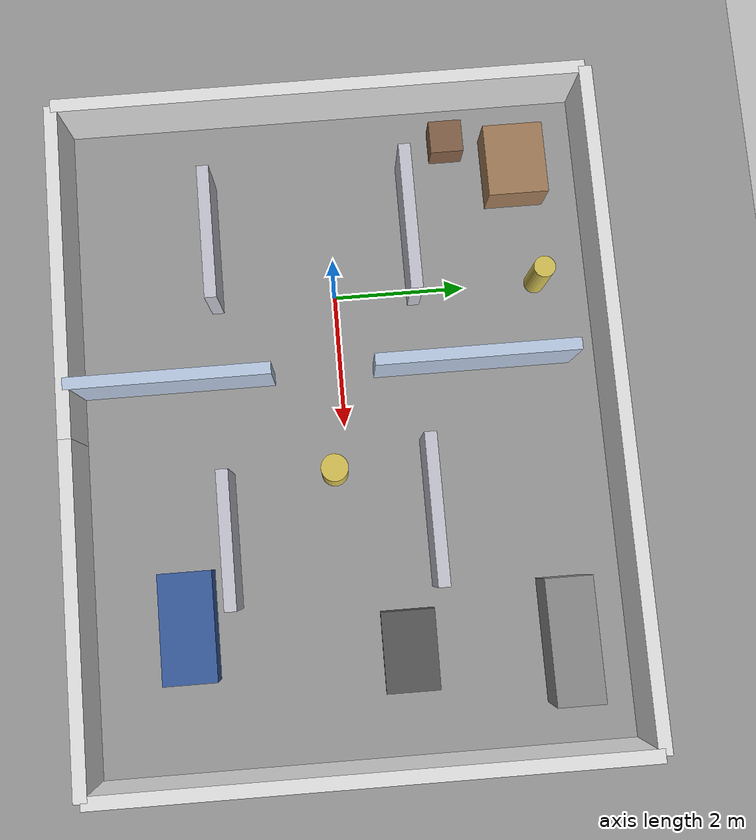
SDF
<?xml version="1.0" ?>
<sdf version="1.9">
  <world name="hexapod_world">

    <!-- Physics -->
    <physics name="1ms" type="bullet">
      <max_step_size>0.001</max_step_size>
      <real_time_factor>1.0</real_time_factor>
    </physics>

    <!-- Required Harmonic system plugins -->
    <plugin filename="gz-sim-physics-system"
            name="gz::sim::systems::Physics"/>
    <plugin filename="gz-sim-user-commands-system"
            name="gz::sim::systems::UserCommands"/>
    <plugin filename="gz-sim-scene-broadcaster-system"
            name="gz::sim::systems::SceneBroadcaster"/>
    <plugin filename="gz-sim-contact-system"
            name="gz::sim::systems::Contact"/>
    <plugin filename="gz-sim-sensors-system"
            name="gz::sim::systems::Sensors"/>

    <!-- Lighting -->
    <light type="directional" name="sun">
      <cast_shadows>true</cast_shadows>
      <pose>0 0 10 0 0 0</pose>
      <diffuse>0.8 0.8 0.8 1</diffuse>
      <specular>0.2 0.2 0.2 1</specular>
      <direction>-0.5 0.1 -0.9</direction>
    </light>

    <!-- Ground plane with high friction for hexapod feet -->
    <model name="ground_plane">
      <static>true</static>
      <link name="link">
        <collision name="collision">
          <geometry>
            <plane>
              <normal>0 0 1</normal>
              <size>100 100</size>
            </plane>
          </geometry>
          <surface>
            <friction>
              <bullet>
                <friction>2.0</friction>
                <friction2>2.0</friction2>
                <rolling_friction>0.1</rolling_friction>
              </bullet>
            </friction>
            <contact>
              <bullet>
                <kp>1e6</kp>
                <kd>100</kd>
              </bullet>
            </contact>
          </surface>
        </collision>
        <visual name="visual">
          <geometry>
            <plane>
              <normal>0 0 1</normal>
              <size>100 100</size>
            </plane>
          </geometry>
          <material>
            <ambient>0.4 0.4 0.4 1</ambient>
            <diffuse>0.6 0.6 0.6 1</diffuse>
          </material>
        </visual>
      </link>
    </model>

    <!-- Indoor test house layout. Door openings are >= 1.0m for hexapod clearance. -->
    <model name="house_wall_north">
      <static>true</static>
      <pose>2.0 4.0 0.5 0 0 0</pose>
      <link name="link">
        <collision name="collision"><geometry><box><size>10.0 0.2 1.0</size></box></geometry></collision>
        <visual name="visual"><geometry><box><size>10.0 0.2 1.0</size></box></geometry><material><ambient>0.88 0.88 0.88 1</ambient><diffuse>0.9 0.9 0.9 1</diffuse></material></visual>
      </link>
    </model>

    <model name="house_wall_south_left">
      <static>true</static>
      <pose>-0.5 -4.0 0.5 0 0 0</pose>
      <link name="link">
        <collision name="collision"><geometry><box><size>5.0 0.2 1.0</size></box></geometry></collision>
        <visual name="visual"><geometry><box><size>5.0 0.2 1.0</size></box></geometry><material><ambient>0.88 0.88 0.88 1</ambient><diffuse>0.9 0.9 0.9 1</diffuse></material></visual>
      </link>
    </model>

    <model name="house_wall_south_right">
      <static>true</static>
      <pose>4.5 -4.0 0.5 0 0 0</pose>
      <link name="link">
        <collision name="collision"><geometry><box><size>5.0 0.2 1.0</size></box></geometry></collision>
        <visual name="visual"><geometry><box><size>5.0 0.2 1.0</size></box></geometry><material><ambient>0.88 0.88 0.88 1</ambient><diffuse>0.9 0.9 0.9 1</diffuse></material></visual>
      </link>
    </model>

    <model name="house_wall_west">
      <static>true</static>
      <pose>-3.0 0.0 0.5 0 0 0</pose>
      <link name="link">
        <collision name="collision"><geometry><box><size>0.2 8.0 1.0</size></box></geometry></collision>
        <visual name="visual"><geometry><box><size>0.2 8.0 1.0</size></box></geometry><material><ambient>0.88 0.88 0.88 1</ambient><diffuse>0.9 0.9 0.9 1</diffuse></material></visual>
      </link>
    </model>

    <model name="house_wall_east">
      <static>true</static>
      <pose>7.0 0.0 0.5 0 0 0</pose>
      <link name="link">
        <collision name="collision"><geometry><box><size>0.2 8.0 1.0</size></box></geometry></collision>
        <visual name="visual"><geometry><box><size>0.2 8.0 1.0</size></box></geometry><material><ambient>0.88 0.88 0.88 1</ambient><diffuse>0.9 0.9 0.9 1</diffuse></material></visual>
      </link>
    </model>

    <!-- Interior walls with wide doorways (>= 1.0m) -->
    <model name="interior_wall_vertical_left_segment">
      <static>true</static>
      <pose>1.2 -2.5 0.5 0 0 0</pose>
      <link name="link">
        <collision name="collision"><geometry><box><size>0.18 3.0 1.0</size></box></geometry></collision>
        <visual name="visual"><geometry><box><size>0.18 3.0 1.0</size></box></geometry><material><ambient>0.73 0.80 0.90 1</ambient><diffuse>0.73 0.80 0.90 1</diffuse></material></visual>
      </link>
    </model>

    <model name="interior_wall_vertical_right_segment">
      <static>true</static>
      <pose>1.2 2.0 0.5 0 0 0</pose>
      <link name="link">
        <collision name="collision"><geometry><box><size>0.18 3.0 1.0</size></box></geometry></collision>
        <visual name="visual"><geometry><box><size>0.18 3.0 1.0</size></box></geometry><material><ambient>0.73 0.80 0.90 1</ambient><diffuse>0.73 0.80 0.90 1</diffuse></material></visual>
      </link>
    </model>

    <model name="interior_wall_horizontal_top_left">
      <static>true</static>
      <pose>-0.9 1.2 0.5 0 0 0</pose>
      <link name="link">
        <collision name="collision"><geometry><box><size>2.2 0.18 1.0</size></box></geometry></collision>
        <visual name="visual"><geometry><box><size>2.2 0.18 1.0</size></box></geometry><material><ambient>0.78 0.78 0.83 1</ambient><diffuse>0.78 0.78 0.83 1</diffuse></material></visual>
      </link>
    </model>

    <model name="interior_wall_horizontal_top_right">
      <static>true</static>
      <pose>3.4 1.2 0.5 0 0 0</pose>
      <link name="link">
        <collision name="collision"><geometry><box><size>2.2 0.18 1.0</size></box></geometry></collision>
        <visual name="visual"><geometry><box><size>2.2 0.18 1.0</size></box></geometry><material><ambient>0.78 0.78 0.83 1</ambient><diffuse>0.78 0.78 0.83 1</diffuse></material></visual>
      </link>
    </model>

    <model name="interior_wall_horizontal_bottom_left">
      <static>true</static>
      <pose>-0.9 -1.8 0.5 0 0 0</pose>
      <link name="link">
        <collision name="collision"><geometry><box><size>2.0 0.18 1.0</size></box></geometry></collision>
        <visual name="visual"><geometry><box><size>2.0 0.18 1.0</size></box></geometry><material><ambient>0.78 0.78 0.83 1</ambient><diffuse>0.78 0.78 0.83 1</diffuse></material></visual>
      </link>
    </model>

    <model name="interior_wall_horizontal_bottom_right">
      <static>true</static>
      <pose>3.6 -1.8 0.5 0 0 0</pose>
      <link name="link">
        <collision name="collision"><geometry><box><size>2.0 0.18 1.0</size></box></geometry></collision>
        <visual name="visual"><geometry><box><size>2.0 0.18 1.0</size></box></geometry><material><ambient>0.78 0.78 0.83 1</ambient><diffuse>0.78 0.78 0.83 1</diffuse></material></visual>
      </link>
    </model>

    <!-- Furniture-like static obstacles -->
    <model name="kitchen_counter_block">
      <static>true</static>
      <pose>5.4 3.0 0.35 0 0 0</pose>
      <link name="link">
        <collision name="collision"><geometry><box><size>1.8 0.7 0.7</size></box></geometry></collision>
        <visual name="visual"><geometry><box><size>1.8 0.7 0.7</size></box></geometry><material><ambient>0.55 0.55 0.55 1</ambient><diffuse>0.55 0.55 0.55 1</diffuse></material></visual>
      </link>
    </model>

    <model name="sofa_block">
      <static>true</static>
      <pose>4.8 -2.5 0.22 0 0 0</pose>
      <link name="link">
        <collision name="collision"><geometry><box><size>1.6 0.8 0.44</size></box></geometry></collision>
        <visual name="visual"><geometry><box><size>1.6 0.8 0.44</size></box></geometry><material><ambient>0.22 0.36 0.62 1</ambient><diffuse>0.22 0.36 0.62 1</diffuse></material></visual>
      </link>
    </model>

    <model name="table_block">
      <static>true</static>
      <pose>-1.8 2.9 0.3 0 0 0</pose>
      <link name="link">
        <collision name="collision"><geometry><box><size>1.1 0.9 0.6</size></box></geometry></collision>
        <visual name="visual"><geometry><box><size>1.1 0.9 0.6</size></box></geometry><material><ambient>0.64 0.49 0.35 1</ambient><diffuse>0.64 0.49 0.35 1</diffuse></material></visual>
      </link>
    </model>

    <model name="chair_block">
      <static>true</static>
      <pose>-2.3 1.9 0.22 0 0 0</pose>
      <link name="link">
        <collision name="collision"><geometry><box><size>0.5 0.5 0.44</size></box></geometry></collision>
        <visual name="visual"><geometry><box><size>0.5 0.5 0.44</size></box></geometry><material><ambient>0.52 0.38 0.28 1</ambient><diffuse>0.52 0.38 0.28 1</diffuse></material></visual>
      </link>
    </model>

    <!-- Column landmarks for lidar/depth mapping -->
    <model name="column_1">
      <static>true</static>
      <pose>2.7 -0.2 0.45 0 0 0</pose>
      <link name="link">
        <collision name="collision"><geometry><cylinder><radius>0.2</radius><length>0.9</length></cylinder></geometry></collision>
        <visual name="visual"><geometry><cylinder><radius>0.2</radius><length>0.9</length></cylinder></geometry><material><ambient>0.84 0.76 0.33 1</ambient><diffuse>0.84 0.76 0.33 1</diffuse></material></visual>
      </link>
    </model>

    <model name="column_2">
      <static>true</static>
      <pose>0.0 3.1 0.45 0 0 0</pose>
      <link name="link">
        <collision name="collision"><geometry><cylinder><radius>0.16</radius><length>0.9</length></cylinder></geometry></collision>
        <visual name="visual"><geometry><cylinder><radius>0.16</radius><length>0.9</length></cylinder></geometry><material><ambient>0.84 0.76 0.33 1</ambient><diffuse>0.84 0.76 0.33 1</diffuse></material></visual>
      </link>
    </model>

    <!-- Mild ramp for traversal challenge -->
    <model name="hall_ramp">
      <static>true</static>
      <pose>5.4 0.7 0.06 0.0 0.12 0.0</pose>
      <link name="link">
        <collision name="collision"><geometry><box><size>1.2 0.8 0.12</size></box></geometry></collision>
        <visual name="visual"><geometry><box><size>1.2 0.8 0.12</size></box></geometry><material><ambient>0.36 0.36 0.36 1</ambient><diffuse>0.36 0.36 0.36 1</diffuse></material></visual>
      </link>
    </model>

  </world>
</sdf>
